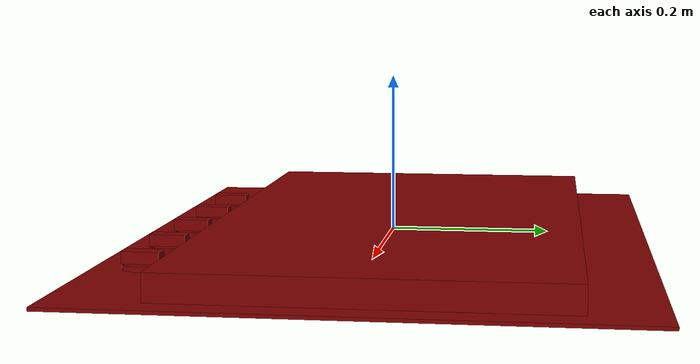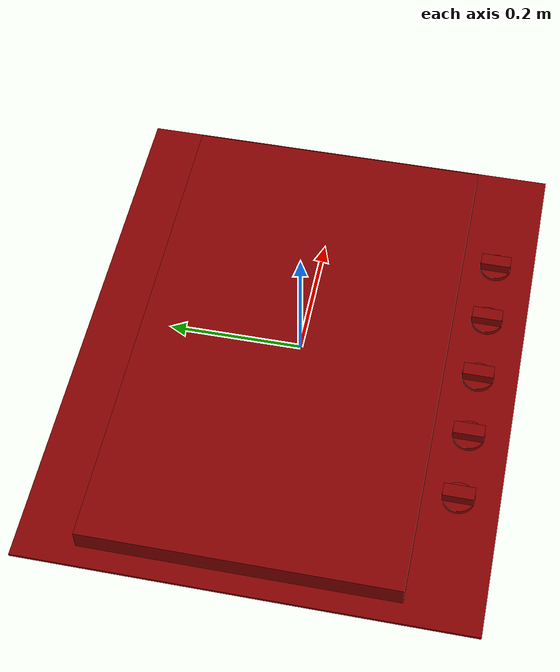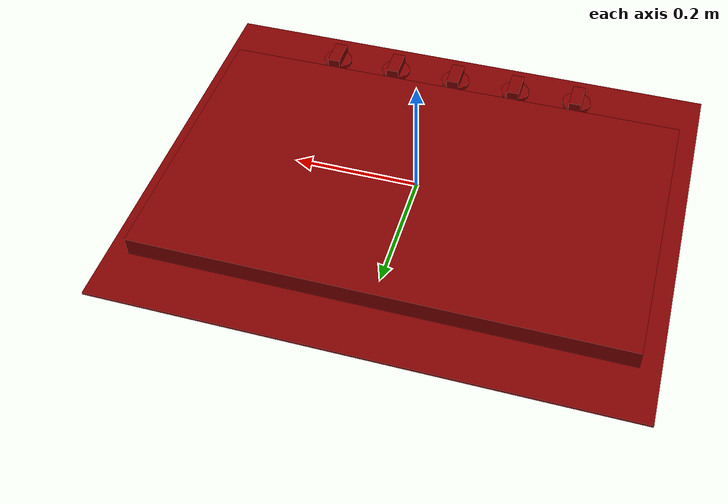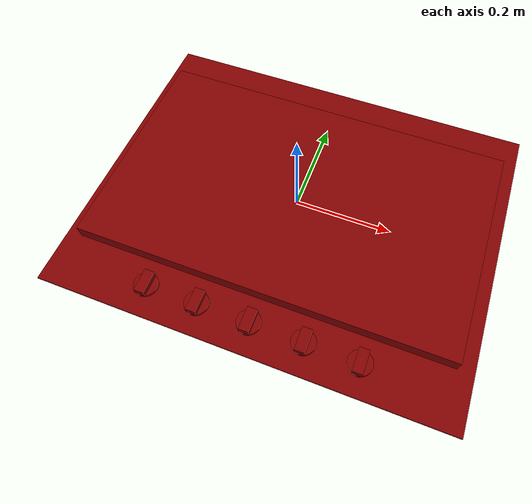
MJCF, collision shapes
<?xml version='1.0' encoding='UTF-8'?>
<mujoco model="model">
  <option timestep="0.002" gravity="0.0 0.0 -9.81"/>
  <compiler angle="radian"/>
  <asset>
    <mesh file="visuals/knob_center.obj" name="knob_center_vis"/>
    <mesh file="visuals/knob_front_left.obj" name="knob_front_left_vis"/>
    <mesh file="visuals/knob_front_right.obj" name="knob_front_right_vis"/>
    <mesh file="visuals/knob_rear_left.obj" name="knob_rear_left_vis"/>
    <mesh file="visuals/knob_rear_right.obj" name="knob_rear_right_vis"/>
    <mesh file="visuals/Body001.obj" name="Body001_vis"/>
    <texture file="visuals/T_BC001.png" name="Body001_material" type="2d"/>
    <material name="Body001_material" rgba="1 1 1 1.0" texture="Body001_material" shininess="0.1" specular="6"/>
    <texture file="visuals/T_BC001.png" name="knob_center_material" type="2d"/>
    <material name="knob_center_material" rgba="1 1 1 1.0" texture="knob_center_material" shininess="0.1" specular="6"/>
    <texture file="visuals/T_BC001.png" name="knob_front_left_material" type="2d"/>
    <material name="knob_front_left_material" rgba="1 1 1 1.0" texture="knob_front_left_material" shininess="0.1" specular="6"/>
    <texture file="visuals/T_BC001.png" name="knob_front_right_material" type="2d"/>
    <material name="knob_front_right_material" rgba="1 1 1 1.0" texture="knob_front_right_material" shininess="0.1" specular="6"/>
    <texture file="visuals/T_BC001.png" name="knob_rear_left_material" type="2d"/>
    <material name="knob_rear_left_material" rgba="1 1 1 1.0" texture="knob_rear_left_material" shininess="0.1" specular="6"/>
    <texture file="visuals/T_BC001.png" name="knob_rear_right_material" type="2d"/>
    <material name="knob_rear_right_material" rgba="1 1 1 1.0" texture="knob_rear_right_material" shininess="0.1" specular="6"/>
  </asset>
  <default>
    <default class="visual">
      <geom conaffinity="0" contype="0" group="1" type="mesh"/>
    </default>
    <default class="collision">
      <geom group="0" rgba="0.5 0 0 0.5"/>
    </default>
    <default class="spawn">
      <geom group="0" rgba="1 1 1 0.5" contype="0" conaffinity="0"/>
      <site group="0" rgba="1 1 1 0.5"/>
    </default>
    <default class="region">
      <geom group="1" conaffinity="0" contype="0" rgba="0 1 0 0"/>
    </default>
  </default>
  <worldbody>
    <body>
      <body name="object">
        <geom mesh="Body001_vis" type="mesh" solimp="0.998 0.998 0.001" solref="0.001 1" friction="0.95 0.3 0.1" class="visual" material="Body001_material"/>
        <geom class="collision" type="box" pos="0.00000029 -0.00000017 -0.01637214" size="0.41916248202323914 0.32970917224884033 0.0021039771381765604" quat="1.0 0.0 0.0 0.0"/>
        <geom class="collision" type="box" pos="-0.00068437 0.01200438 0.00194025" size="0.3875235617160797 0.23065532743930817 0.016331639140844345" quat="1.0 0.0 0.0 0.0"/>
        <body name="knob_center">
          <joint axis="0.0 0.0 1.0" pos="0.00439605 -0.26957607 -0.00650402" limited="true" name="knob_center_joint" range="0.0 3.141592653589793" type="hinge" damping="0.2" armature="0.01" frictionloss="1"/>
          <geom mesh="knob_center_vis" type="mesh" solimp="0.998 0.998 0.001" solref="0.001 1" friction="0.95 0.3 0.1" class="visual" material="knob_center_material"/>
          <geom class="collision" type="cylinder" pos="0.00445113 -0.26974484 -0.01045089" size="0.024202115833759308 0.0032806009985506535" quat="1.0 0.0 0.0 0.0" friction="100 0.5 0.01"/>
          <geom class="collision" type="box" pos="0.00445114 -0.26974487 -0.00028714" size="0.010361538268625736 0.0228994470089674 0.007754963357001543" quat="1.0 0.0 0.0 0.0" name="knob_center_main" friction="100 0.5 0.01"/>
        </body>
        <body name="knob_front_left">
          <joint axis="0.0 0.0 1.0" pos="-0.21113328 -0.26957601 -0.00650403" limited="true" name="knob_front_left_joint" range="0.0 3.141592653589793" type="hinge" damping="0.2" armature="0.01" frictionloss="1"/>
          <geom mesh="knob_front_left_vis" type="mesh" solimp="0.998 0.998 0.001" solref="0.001 1" friction="0.95 0.3 0.1" class="visual" material="knob_front_left_material"/>
          <geom class="collision" type="cylinder" pos="-0.21080855 -0.26934501 -0.01045089" size="0.024202115833759308 0.0032806009985506535" quat="1.0 0.0 0.0 0.0" friction="100 0.5 0.01"/>
          <geom class="collision" type="box" pos="-0.21080855 -0.26934504 -0.00028714" size="0.010361538268625736 0.022899407893419266 0.007754963357001543" quat="1.0 0.0 0.0 0.0" name="knob_front_left_main" friction="100 0.5 0.01"/>
        </body>
        <body name="knob_front_right">
          <joint axis="0.0 0.0 1.0" pos="0.22111359 -0.26957589 -0.00650401" limited="true" name="knob_front_right_joint" range="0.0 3.141592653589793" type="hinge" damping="0.2" armature="0.01" frictionloss="1"/>
          <geom mesh="knob_front_right_vis" type="mesh" solimp="0.998 0.998 0.001" solref="0.001 1" friction="0.95 0.3 0.1" class="visual" material="knob_front_right_material"/>
          <geom class="collision" type="box" pos="0.22103998 -0.26971686 -0.00028713" size="0.010361538268625736 0.022899484261870384 0.007754963357001543" quat="1.0 0.0 0.0 0.0" name="knob_front_right_main" friction="100 0.5 0.01"/>
          <geom class="collision" type="cylinder" pos="0.22103995 -0.26971686 -0.01045088" size="0.024202115833759308 0.0032806009985506535" quat="1.0 0.0 0.0 0.0" friction="100 0.5 0.01"/>
        </body>
        <body name="knob_rear_left">
          <joint axis="0.0 0.0 1.0" pos="-0.10303645 -0.26957601 -0.00650402" limited="true" name="knob_rear_left_joint" range="0.0 3.141592653589793" type="hinge" damping="0.2" armature="0.01" frictionloss="1"/>
          <geom mesh="knob_rear_left_vis" type="mesh" solimp="0.998 0.998 0.001" solref="0.001 1" friction="0.95 0.3 0.1" class="visual" material="knob_rear_left_material"/>
          <geom class="collision" type="box" pos="-0.10289540 -0.26969102 -0.00028714" size="0.010361538268625736 0.022899428382515907 0.007754963357001543" quat="1.0 0.0 0.0 0.0" name="knob_rear_left_main" friction="100 0.5 0.01"/>
          <geom class="collision" type="cylinder" pos="-0.10289541 -0.26969099 -0.01045089" size="0.024202115833759308 0.0032806009985506535" quat="1.0 0.0 0.0 0.0" friction="100 0.5 0.01"/>
        </body>
        <body name="knob_rear_right">
          <joint axis="0.0 0.0 1.0" pos="0.11310073 -0.26957601 -0.00650401" limited="true" name="knob_rear_right_joint" range="0.0 3.141592653589793" type="hinge" damping="0.2" armature="0.01" frictionloss="1"/>
          <geom mesh="knob_rear_right_vis" type="mesh" solimp="0.998 0.998 0.001" solref="0.001 1" friction="0.95 0.3 0.1" class="visual" material="knob_rear_right_material"/>
          <geom class="collision" type="cylinder" pos="0.11311419 -0.26971698 -0.01045088" size="0.024202115833759308 0.0032806009985506535" quat="1.0 0.0 0.0 0.0" friction="100 0.5 0.01"/>
          <geom class="collision" type="box" pos="0.11311420 -0.26971698 -0.00028713" size="0.010361538268625736 0.022899465635418892 0.007754963357001543" quat="1.0 0.0 0.0 0.0" name="knob_rear_right_main" friction="100 0.5 0.01"/>
        </body>
        <site type="cylinder" rgba="0.3 0.4 1 0.5" size="0.07914305478334427 0.006137563847005367" pos="-0.00010840 0.00019188 0.00295193" name="burner_on_center"/>
        <site type="cylinder" rgba="0.3 0.4 1 0.5" size="0.05995772033929825 0.007226970512419939" pos="-0.24542715 0.13784452 0.00014171" name="burner_on_rear_left"/>
        <site type="cylinder" rgba="0.3 0.4 1 0.5" size="0.03281368687748909 0.0069902860559523106" pos="-0.28153703 -0.11384038 0.00010779" name="burner_on_front_left"/>
        <site type="cylinder" rgba="0.3 0.4 1 0.5" size="0.04509144276380539 0.0071455929428339005" pos="0.24578581 0.13789068 -0.00038306" name="burner_on_rear_right"/>
        <site type="cylinder" rgba="0.3 0.4 1 0.5" size="0.044911909848451614 0.007051883265376091" pos="0.28158643 -0.11378777 -0.00021059" name="burner_on_front_right"/>
        <site type="cylinder" rgba="0.5 0 0 0" size="0.045091453939676285 4.999999873689376e-05" pos="0.24578581 0.13789068 0.01832189" name="burner_rear_right_place_site"/>
        <site type="cylinder" rgba="0.5 0 0 0" size="0.05995772033929825 4.999999873689376e-05" pos="-0.24542715 0.13784452 0.01832189" name="burner_rear_left_place_site"/>
        <site type="cylinder" rgba="0.5 0 0 0" size="0.04491190239787102 4.999999873689376e-05" pos="0.28158640 -0.11378776 0.01832189" name="burner_front_right_place_site"/>
        <site type="cylinder" rgba="0.5 0 0 0" size="0.03281367942690849 4.999999509891495e-05" pos="-0.28153700 -0.11384037 0.01832189" name="burner_front_left_place_site"/>
        <site type="cylinder" rgba="0.5 0 0 0" size="0.07914305478334427 4.999999873689376e-05" pos="-0.00010840 0.00019188 0.01832189" name="burner_center_place_site"/>
        <geom class="region" name="reg_main" type="box" pos="2.8500000001652204e-07 0.00033412500000001844 -0.01635353" size="0.420191895 0.330557985 0.00291839"/>
      </body>
    </body>
  </worldbody>
  <actuator>
    <motor name="knob_center_joint_actuator" joint="knob_center_joint" gear="10"/>
    <motor name="knob_front_left_joint_actuator" joint="knob_front_left_joint" gear="10"/>
    <motor name="knob_front_right_joint_actuator" joint="knob_front_right_joint" gear="10"/>
    <motor name="knob_rear_left_joint_actuator" joint="knob_rear_left_joint" gear="10"/>
    <motor name="knob_rear_right_joint_actuator" joint="knob_rear_right_joint" gear="10"/>
  </actuator>
</mujoco>
